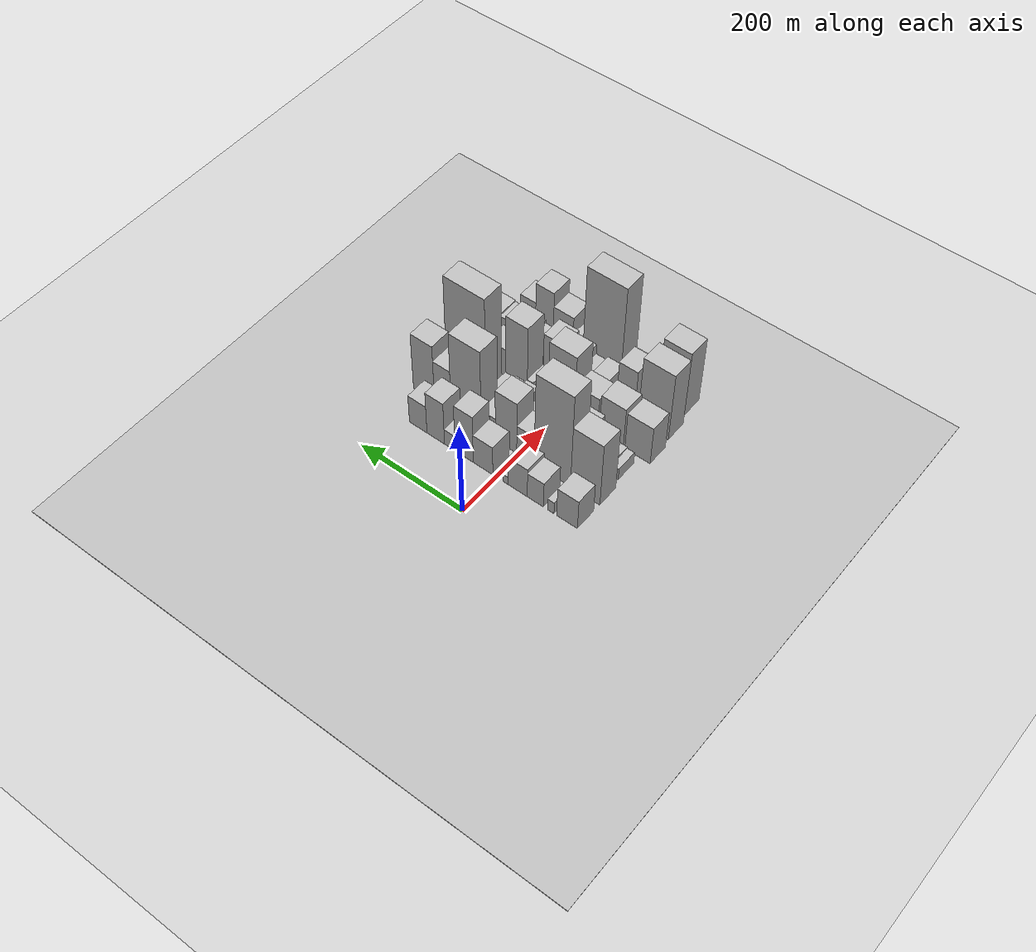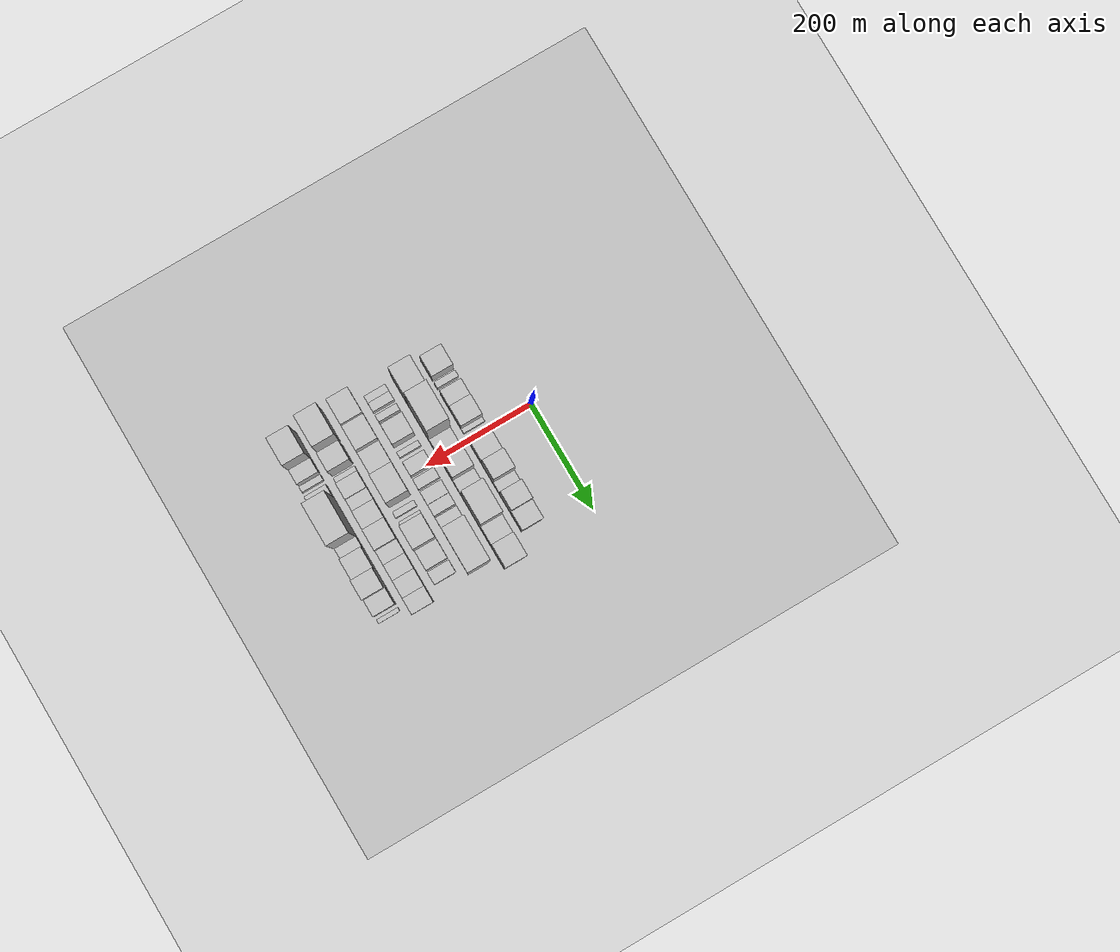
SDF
<sdf version="1.6">
 <world name="default">
  <include><name>ground_plane_1</name><uri>model://HANNAS_ground_plane</uri></include>
  <include>
   <name>ground_plane_2</name>
   <uri>model://HANNAS_ground_plane</uri>
   <pose>100 0 0  0 0 0</pose>
  </include>
  <model name="building_18">
   <static>1</static>
   <pose>100.0000 -134.1330 0 0.000000 0.000000 0.000000</pose>
   <link name="link">
    <pose>0 0 33.00 0 0 0</pose>
    <collision name="collision"><geometry><box><size>40.0000 38.6607 66.0000</size></box></geometry></collision>
    <visual name="visual">
     <cast_shadows>0</cast_shadows>
     <geometry><box><size>40.0000 38.6607 66.0000</size></box></geometry>
     <material>
      <script>
       <uri>model://HANNAS_wall/materials/scripts</uri>
       <uri>model://HANNAS_wall/materials/textures</uri>
       <name>vrc/HANNAS_wall</name>
      </script>
     </material>
    </visual>
   </link>
  </model>
  <model name="building_19">
   <static>1</static>
   <pose>100.0000 -103.9196 0 0.000000 0.000000 0.000000</pose>
   <link name="link">
    <pose>0 0 13.50 0 0 0</pose>
    <collision name="collision"><geometry><box><size>40.0000 11.7662 27.0000</size></box></geometry></collision>
    <visual name="visual">
     <cast_shadows>0</cast_shadows>
     <geometry><box><size>40.0000 11.7662 27.0000</size></box></geometry>
     <material>
      <script>
       <uri>model://HANNAS_wall/materials/scripts</uri>
       <uri>model://HANNAS_wall/materials/textures</uri>
       <name>vrc/HANNAS_wall</name>
      </script>
     </material>
    </visual>
   </link>
  </model>
  <model name="building_20">
   <static>1</static>
   <pose>100.0000 -74.7390 0 0.000000 0.000000 0.000000</pose>
   <link name="link">
    <pose>0 0 28.50 0 0 0</pose>
    <collision name="collision"><geometry><box><size>40.0000 30.5950 57.0000</size></box></geometry></collision>
    <visual name="visual">
     <cast_shadows>0</cast_shadows>
     <geometry><box><size>40.0000 30.5950 57.0000</size></box></geometry>
     <material>
      <script>
       <uri>model://HANNAS_wall/materials/scripts</uri>
       <uri>model://HANNAS_wall/materials/textures</uri>
       <name>vrc/HANNAS_wall</name>
      </script>
     </material>
    </visual>
   </link>
  </model>
  <model name="building_21">
   <static>1</static>
   <pose>100.0000 -40.7443 0 0.000000 0.000000 0.000000</pose>
   <link name="link">
    <pose>0 0 33.00 0 0 0</pose>
    <collision name="collision"><geometry><box><size>40.0000 37.3942 66.0000</size></box></geometry></collision>
    <visual name="visual">
     <cast_shadows>0</cast_shadows>
     <geometry><box><size>40.0000 37.3942 66.0000</size></box></geometry>
     <material>
      <script>
       <uri>model://HANNAS_wall/materials/scripts</uri>
       <uri>model://HANNAS_wall/materials/textures</uri>
       <name>vrc/HANNAS_wall</name>
      </script>
     </material>
    </visual>
   </link>
  </model>
  <model name="building_22">
   <static>1</static>
   <pose>100.0000 -17.7094 0 0.000000 0.000000 0.000000</pose>
   <link name="link">
    <pose>0 0 9.00 0 0 0</pose>
    <collision name="collision"><geometry><box><size>40.0000 8.6757 18.0000</size></box></geometry></collision>
    <visual name="visual">
     <cast_shadows>0</cast_shadows>
     <geometry><box><size>40.0000 8.6757 18.0000</size></box></geometry>
     <material>
      <script>
       <uri>model://HANNAS_wall/materials/scripts</uri>
       <uri>model://HANNAS_wall/materials/textures</uri>
       <name>vrc/HANNAS_wall</name>
      </script>
     </material>
    </visual>
   </link>
  </model>
  <model name="building_23">
   <static>1</static>
   <pose>100.0000 -3.8777 0 0.000000 0.000000 0.000000</pose>
   <link name="link">
    <pose>0 0 7.50 0 0 0</pose>
    <collision name="collision"><geometry><box><size>40.0000 6.9877 15.0000</size></box></geometry></collision>
    <visual name="visual">
     <cast_shadows>0</cast_shadows>
     <geometry><box><size>40.0000 6.9877 15.0000</size></box></geometry>
     <material>
      <script>
       <uri>model://HANNAS_wall/materials/scripts</uri>
       <uri>model://HANNAS_wall/materials/textures</uri>
       <name>vrc/HANNAS_wall</name>
      </script>
     </material>
    </visual>
   </link>
  </model>
  <model name="building_24">
   <static>1</static>
   <pose>100.0000 25.6848 0 0.000000 0.000000 0.000000</pose>
   <link name="link">
    <pose>0 0 33.00 0 0 0</pose>
    <collision name="collision"><geometry><box><size>40.0000 38.1373 66.0000</size></box></geometry></collision>
    <visual name="visual">
     <cast_shadows>0</cast_shadows>
     <geometry><box><size>40.0000 38.1373 66.0000</size></box></geometry>
     <material>
      <script>
       <uri>model://HANNAS_wall/materials/scripts</uri>
       <uri>model://HANNAS_wall/materials/textures</uri>
       <name>vrc/HANNAS_wall</name>
      </script>
     </material>
    </visual>
   </link>
  </model>
  <model name="building_25">
   <static>1</static>
   <pose>100.0000 62.7408 0 0.000000 0.000000 0.000000</pose>
   <link name="link">
    <pose>0 0 54.00 0 0 0</pose>
    <collision name="collision"><geometry><box><size>40.0000 35.9746 108.0000</size></box></geometry></collision>
    <visual name="visual">
     <cast_shadows>0</cast_shadows>
     <geometry><box><size>40.0000 35.9746 108.0000</size></box></geometry>
     <material>
      <script>
       <uri>model://HANNAS_wall/materials/scripts</uri>
       <uri>model://HANNAS_wall/materials/textures</uri>
       <name>vrc/HANNAS_wall</name>
      </script>
     </material>
    </visual>
   </link>
  </model>
  <model name="building_26">
   <static>1</static>
   <pose>100.0000 91.1006 0 0.000000 0.000000 0.000000</pose>
   <link name="link">
    <pose>0 0 18.00 0 0 0</pose>
    <collision name="collision"><geometry><box><size>40.0000 20.7449 36.0000</size></box></geometry></collision>
    <visual name="visual">
     <cast_shadows>0</cast_shadows>
     <geometry><box><size>40.0000 20.7449 36.0000</size></box></geometry>
     <material>
      <script>
       <uri>model://HANNAS_wall/materials/scripts</uri>
       <uri>model://HANNAS_wall/materials/textures</uri>
       <name>vrc/HANNAS_wall</name>
      </script>
     </material>
    </visual>
   </link>
  </model>
  <model name="building_27">
   <static>1</static>
   <pose>100.0000 119.0451 0 0.000000 0.000000 0.000000</pose>
   <link name="link">
    <pose>0 0 48.00 0 0 0</pose>
    <collision name="collision"><geometry><box><size>40.0000 35.1443 96.0000</size></box></geometry></collision>
    <visual name="visual">
     <cast_shadows>0</cast_shadows>
     <geometry><box><size>40.0000 35.1443 96.0000</size></box></geometry>
     <material>
      <script>
       <uri>model://HANNAS_wall/materials/scripts</uri>
       <uri>model://HANNAS_wall/materials/textures</uri>
       <name>vrc/HANNAS_wall</name>
      </script>
     </material>
    </visual>
   </link>
  </model>
  <model name="building_28">
   <static>1</static>
   <pose>100.0000 154.2895 0 0.000000 0.000000 0.000000</pose>
   <link name="link">
    <pose>0 0 31.50 0 0 0</pose>
    <collision name="collision"><geometry><box><size>40.0000 35.3444 63.0000</size></box></geometry></collision>
    <visual name="visual">
     <cast_shadows>0</cast_shadows>
     <geometry><box><size>40.0000 35.3444 63.0000</size></box></geometry>
     <material>
      <script>
       <uri>model://HANNAS_wall/materials/scripts</uri>
       <uri>model://HANNAS_wall/materials/textures</uri>
       <name>vrc/HANNAS_wall</name>
      </script>
     </material>
    </visual>
   </link>
  </model>
  <model name="building_71">
   <static>1</static>
   <pose>155.0000 -126.2887 0 0.000000 0.000000 0.000000</pose>
   <link name="link">
    <pose>0 0 70.50 0 0 0</pose>
    <collision name="collision"><geometry><box><size>40.0000 55.0686 141.0000</size></box></geometry></collision>
    <visual name="visual">
     <cast_shadows>0</cast_shadows>
     <geometry><box><size>40.0000 55.0686 141.0000</size></box></geometry>
     <material>
      <script>
       <uri>model://HANNAS_wall/materials/scripts</uri>
       <uri>model://HANNAS_wall/materials/textures</uri>
       <name>vrc/HANNAS_wall</name>
      </script>
     </material>
    </visual>
   </link>
  </model>
  <model name="building_72">
   <static>1</static>
   <pose>155.0000 -64.1300 0 0.000000 0.000000 0.000000</pose>
   <link name="link">
    <pose>0 0 105.00 0 0 0</pose>
    <collision name="collision"><geometry><box><size>40.0000 69.2488 210.0000</size></box></geometry></collision>
    <visual name="visual">
     <cast_shadows>0</cast_shadows>
     <geometry><box><size>40.0000 69.2488 210.0000</size></box></geometry>
     <material>
      <script>
       <uri>model://HANNAS_wall/materials/scripts</uri>
       <uri>model://HANNAS_wall/materials/textures</uri>
       <name>vrc/HANNAS_wall</name>
      </script>
     </material>
    </visual>
   </link>
  </model>
  <model name="building_73">
   <static>1</static>
   <pose>155.0000 -12.7014 0 0.000000 0.000000 0.000000</pose>
   <link name="link">
    <pose>0 0 33.00 0 0 0</pose>
    <collision name="collision"><geometry><box><size>40.0000 33.6084 66.0000</size></box></geometry></collision>
    <visual name="visual">
     <cast_shadows>0</cast_shadows>
     <geometry><box><size>40.0000 33.6084 66.0000</size></box></geometry>
     <material>
      <script>
       <uri>model://HANNAS_wall/materials/scripts</uri>
       <uri>model://HANNAS_wall/materials/textures</uri>
       <name>vrc/HANNAS_wall</name>
      </script>
     </material>
    </visual>
   </link>
  </model>
  <model name="building_74">
   <static>1</static>
   <pose>155.0000 24.8559 0 0.000000 0.000000 0.000000</pose>
   <link name="link">
    <pose>0 0 58.50 0 0 0</pose>
    <collision name="collision"><geometry><box><size>40.0000 41.5062 117.0000</size></box></geometry></collision>
    <visual name="visual">
     <cast_shadows>0</cast_shadows>
     <geometry><box><size>40.0000 41.5062 117.0000</size></box></geometry>
     <material>
      <script>
       <uri>model://HANNAS_wall/materials/scripts</uri>
       <uri>model://HANNAS_wall/materials/textures</uri>
       <name>vrc/HANNAS_wall</name>
      </script>
     </material>
    </visual>
   </link>
  </model>
  <model name="building_75">
   <static>1</static>
   <pose>155.0000 59.6833 0 0.000000 0.000000 0.000000</pose>
   <link name="link">
    <pose>0 0 25.50 0 0 0</pose>
    <collision name="collision"><geometry><box><size>40.0000 28.1487 51.0000</size></box></geometry></collision>
    <visual name="visual">
     <cast_shadows>0</cast_shadows>
     <geometry><box><size>40.0000 28.1487 51.0000</size></box></geometry>
     <material>
      <script>
       <uri>model://HANNAS_wall/materials/scripts</uri>
       <uri>model://HANNAS_wall/materials/textures</uri>
       <name>vrc/HANNAS_wall</name>
      </script>
     </material>
    </visual>
   </link>
  </model>
  <model name="building_76">
   <static>1</static>
   <pose>155.0000 103.7860 0 0.000000 0.000000 0.000000</pose>
   <link name="link">
    <pose>0 0 91.50 0 0 0</pose>
    <collision name="collision"><geometry><box><size>40.0000 60.0567 183.0000</size></box></geometry></collision>
    <visual name="visual">
     <cast_shadows>0</cast_shadows>
     <geometry><box><size>40.0000 60.0567 183.0000</size></box></geometry>
     <material>
      <script>
       <uri>model://HANNAS_wall/materials/scripts</uri>
       <uri>model://HANNAS_wall/materials/textures</uri>
       <name>vrc/HANNAS_wall</name>
      </script>
     </material>
    </visual>
   </link>
  </model>
  <model name="building_77">
   <static>1</static>
   <pose>155.0000 150.6863 0 0.000000 0.000000 0.000000</pose>
   <link name="link">
    <pose>0 0 48.00 0 0 0</pose>
    <collision name="collision"><geometry><box><size>40.0000 33.7438 96.0000</size></box></geometry></collision>
    <visual name="visual">
     <cast_shadows>0</cast_shadows>
     <geometry><box><size>40.0000 33.7438 96.0000</size></box></geometry>
     <material>
      <script>
       <uri>model://HANNAS_wall/materials/scripts</uri>
       <uri>model://HANNAS_wall/materials/textures</uri>
       <name>vrc/HANNAS_wall</name>
      </script>
     </material>
    </visual>
   </link>
  </model>
  <model name="building_78">
   <static>1</static>
   <pose>155.0000 189.0195 0 0.000000 0.000000 0.000000</pose>
   <link name="link">
    <pose>0 0 64.50 0 0 0</pose>
    <collision name="collision"><geometry><box><size>40.0000 42.9226 129.0000</size></box></geometry></collision>
    <visual name="visual">
     <cast_shadows>0</cast_shadows>
     <geometry><box><size>40.0000 42.9226 129.0000</size></box></geometry>
     <material>
      <script>
       <uri>model://HANNAS_wall/materials/scripts</uri>
       <uri>model://HANNAS_wall/materials/textures</uri>
       <name>vrc/HANNAS_wall</name>
      </script>
     </material>
    </visual>
   </link>
  </model>
  <model name="building_121">
   <static>1</static>
   <pose>210.0000 -140.7694 0 0.000000 0.000000 0.000000</pose>
   <link name="link">
    <pose>0 0 13.50 0 0 0</pose>
    <collision name="collision"><geometry><box><size>40.0000 13.4068 27.0000</size></box></geometry></collision>
    <visual name="visual">
     <cast_shadows>0</cast_shadows>
     <geometry><box><size>40.0000 13.4068 27.0000</size></box></geometry>
     <material>
      <script>
       <uri>model://HANNAS_wall/materials/scripts</uri>
       <uri>model://HANNAS_wall/materials/textures</uri>
       <name>vrc/HANNAS_wall</name>
      </script>
     </material>
    </visual>
   </link>
  </model>
  <model name="building_122">
   <static>1</static>
   <pose>210.0000 -125.6871 0 0.000000 0.000000 0.000000</pose>
   <link name="link">
    <pose>0 0 15.00 0 0 0</pose>
    <collision name="collision"><geometry><box><size>40.0000 16.7577 30.0000</size></box></geometry></collision>
    <visual name="visual">
     <cast_shadows>0</cast_shadows>
     <geometry><box><size>40.0000 16.7577 30.0000</size></box></geometry>
     <material>
      <script>
       <uri>model://HANNAS_wall/materials/scripts</uri>
       <uri>model://HANNAS_wall/materials/textures</uri>
       <name>vrc/HANNAS_wall</name>
      </script>
     </material>
    </visual>
   </link>
  </model>
  <model name="building_123">
   <static>1</static>
   <pose>210.0000 -105.0170 0 0.000000 0.000000 0.000000</pose>
   <link name="link">
    <pose>0 0 13.50 0 0 0</pose>
    <collision name="collision"><geometry><box><size>40.0000 12.5826 27.0000</size></box></geometry></collision>
    <visual name="visual">
     <cast_shadows>0</cast_shadows>
     <geometry><box><size>40.0000 12.5826 27.0000</size></box></geometry>
     <material>
      <script>
       <uri>model://HANNAS_wall/materials/scripts</uri>
       <uri>model://HANNAS_wall/materials/textures</uri>
       <name>vrc/HANNAS_wall</name>
      </script>
     </material>
    </visual>
   </link>
  </model>
  <model name="building_124">
   <static>1</static>
   <pose>210.0000 -70.7003 0 0.000000 0.000000 0.000000</pose>
   <link name="link">
    <pose>0 0 36.00 0 0 0</pose>
    <collision name="collision"><geometry><box><size>40.0000 38.0507 72.0000</size></box></geometry></collision>
    <visual name="visual">
     <cast_shadows>0</cast_shadows>
     <geometry><box><size>40.0000 38.0507 72.0000</size></box></geometry>
     <material>
      <script>
       <uri>model://HANNAS_wall/materials/scripts</uri>
       <uri>model://HANNAS_wall/materials/textures</uri>
       <name>vrc/HANNAS_wall</name>
      </script>
     </material>
    </visual>
   </link>
  </model>
  <model name="building_125">
   <static>1</static>
   <pose>210.0000 -36.4760 0 0.000000 0.000000 0.000000</pose>
   <link name="link">
    <pose>0 0 12.00 0 0 0</pose>
    <collision name="collision"><geometry><box><size>40.0000 10.3979 24.0000</size></box></geometry></collision>
    <visual name="visual">
     <cast_shadows>0</cast_shadows>
     <geometry><box><size>40.0000 10.3979 24.0000</size></box></geometry>
     <material>
      <script>
       <uri>model://HANNAS_wall/materials/scripts</uri>
       <uri>model://HANNAS_wall/materials/textures</uri>
       <name>vrc/HANNAS_wall</name>
      </script>
     </material>
    </visual>
   </link>
  </model>
  <model name="building_126">
   <static>1</static>
   <pose>210.0000 -8.0788 0 0.000000 0.000000 0.000000</pose>
   <link name="link">
    <pose>0 0 24.00 0 0 0</pose>
    <collision name="collision"><geometry><box><size>40.0000 26.3965 48.0000</size></box></geometry></collision>
    <visual name="visual">
     <cast_shadows>0</cast_shadows>
     <geometry><box><size>40.0000 26.3965 48.0000</size></box></geometry>
     <material>
      <script>
       <uri>model://HANNAS_wall/materials/scripts</uri>
       <uri>model://HANNAS_wall/materials/textures</uri>
       <name>vrc/HANNAS_wall</name>
      </script>
     </material>
    </visual>
   </link>
  </model>
  <model name="building_127">
   <static>1</static>
   <pose>210.0000 19.7451 0 0.000000 0.000000 0.000000</pose>
   <link name="link">
    <pose>0 0 16.50 0 0 0</pose>
    <collision name="collision"><geometry><box><size>40.0000 19.2513 33.0000</size></box></geometry></collision>
    <visual name="visual">
     <cast_shadows>0</cast_shadows>
     <geometry><box><size>40.0000 19.2513 33.0000</size></box></geometry>
     <material>
      <script>
       <uri>model://HANNAS_wall/materials/scripts</uri>
       <uri>model://HANNAS_wall/materials/textures</uri>
       <name>vrc/HANNAS_wall</name>
      </script>
     </material>
    </visual>
   </link>
  </model>
  <model name="building_128">
   <static>1</static>
   <pose>210.0000 46.5879 0 0.000000 0.000000 0.000000</pose>
   <link name="link">
    <pose>0 0 22.50 0 0 0</pose>
    <collision name="collision"><geometry><box><size>40.0000 24.4343 45.0000</size></box></geometry></collision>
    <visual name="visual">
     <cast_shadows>0</cast_shadows>
     <geometry><box><size>40.0000 24.4343 45.0000</size></box></geometry>
     <material>
      <script>
       <uri>model://HANNAS_wall/materials/scripts</uri>
       <uri>model://HANNAS_wall/materials/textures</uri>
       <name>vrc/HANNAS_wall</name>
      </script>
     </material>
    </visual>
   </link>
  </model>
  <model name="building_129">
   <static>1</static>
   <pose>210.0000 69.1998 0 0.000000 0.000000 0.000000</pose>
   <link name="link">
    <pose>0 0 19.50 0 0 0</pose>
    <collision name="collision"><geometry><box><size>40.0000 20.7896 39.0000</size></box></geometry></collision>
    <visual name="visual">
     <cast_shadows>0</cast_shadows>
     <geometry><box><size>40.0000 20.7896 39.0000</size></box></geometry>
     <material>
      <script>
       <uri>model://HANNAS_wall/materials/scripts</uri>
       <uri>model://HANNAS_wall/materials/textures</uri>
       <name>vrc/HANNAS_wall</name>
      </script>
     </material>
    </visual>
   </link>
  </model>
  <model name="building_130">
   <static>1</static>
   <pose>210.0000 91.9075 0 0.000000 0.000000 0.000000</pose>
   <link name="link">
    <pose>0 0 16.50 0 0 0</pose>
    <collision name="collision"><geometry><box><size>40.0000 18.6257 33.0000</size></box></geometry></collision>
    <visual name="visual">
     <cast_shadows>0</cast_shadows>
     <geometry><box><size>40.0000 18.6257 33.0000</size></box></geometry>
     <material>
      <script>
       <uri>model://HANNAS_wall/materials/scripts</uri>
       <uri>model://HANNAS_wall/materials/textures</uri>
       <name>vrc/HANNAS_wall</name>
      </script>
     </material>
    </visual>
   </link>
  </model>
  <model name="building_131">
   <static>1</static>
   <pose>210.0000 148.6969 0 0.000000 0.000000 0.000000</pose>
   <link name="link">
    <pose>0 0 112.50 0 0 0</pose>
    <collision name="collision"><geometry><box><size>40.0000 78.9530 225.0000</size></box></geometry></collision>
    <visual name="visual">
     <cast_shadows>0</cast_shadows>
     <geometry><box><size>40.0000 78.9530 225.0000</size></box></geometry>
     <material>
      <script>
       <uri>model://HANNAS_wall/materials/scripts</uri>
       <uri>model://HANNAS_wall/materials/textures</uri>
       <name>vrc/HANNAS_wall</name>
      </script>
     </material>
    </visual>
   </link>
  </model>
  <model name="building_175">
   <static>1</static>
   <pose>265.0000 -143.5590 0 0.000000 0.000000 0.000000</pose>
   <link name="link">
    <pose>0 0 42.00 0 0 0</pose>
    <collision name="collision"><geometry><box><size>40.0000 47.4509 84.0000</size></box></geometry></collision>
    <visual name="visual">
     <cast_shadows>0</cast_shadows>
     <geometry><box><size>40.0000 47.4509 84.0000</size></box></geometry>
     <material>
      <script>
       <uri>model://HANNAS_wall/materials/scripts</uri>
       <uri>model://HANNAS_wall/materials/textures</uri>
       <name>vrc/HANNAS_wall</name>
      </script>
     </material>
    </visual>
   </link>
  </model>
  <model name="building_176">
   <static>1</static>
   <pose>265.0000 -94.0019 0 0.000000 0.000000 0.000000</pose>
   <link name="link">
    <pose>0 0 45.00 0 0 0</pose>
    <collision name="collision"><geometry><box><size>40.0000 45.6634 90.0000</size></box></geometry></collision>
    <visual name="visual">
     <cast_shadows>0</cast_shadows>
     <geometry><box><size>40.0000 45.6634 90.0000</size></box></geometry>
     <material>
      <script>
       <uri>model://HANNAS_wall/materials/scripts</uri>
       <uri>model://HANNAS_wall/materials/textures</uri>
       <name>vrc/HANNAS_wall</name>
      </script>
     </material>
    </visual>
   </link>
  </model>
  <model name="building_177">
   <static>1</static>
   <pose>265.0000 -45.6022 0 0.000000 0.000000 0.000000</pose>
   <link name="link">
    <pose>0 0 39.00 0 0 0</pose>
    <collision name="collision"><geometry><box><size>40.0000 45.1358 78.0000</size></box></geometry></collision>
    <visual name="visual">
     <cast_shadows>0</cast_shadows>
     <geometry><box><size>40.0000 45.1358 78.0000</size></box></geometry>
     <material>
      <script>
       <uri>model://HANNAS_wall/materials/scripts</uri>
       <uri>model://HANNAS_wall/materials/textures</uri>
       <name>vrc/HANNAS_wall</name>
      </script>
     </material>
    </visual>
   </link>
  </model>
  <model name="building_178">
   <static>1</static>
   <pose>265.0000 2.9374 0 0.000000 0.000000 0.000000</pose>
   <link name="link">
    <pose>0 0 70.50 0 0 0</pose>
    <collision name="collision"><geometry><box><size>40.0000 51.9434 141.0000</size></box></geometry></collision>
    <visual name="visual">
     <cast_shadows>0</cast_shadows>
     <geometry><box><size>40.0000 51.9434 141.0000</size></box></geometry>
     <material>
      <script>
       <uri>model://HANNAS_wall/materials/scripts</uri>
       <uri>model://HANNAS_wall/materials/textures</uri>
       <name>vrc/HANNAS_wall</name>
      </script>
     </material>
    </visual>
   </link>
  </model>
  <model name="building_179">
   <static>1</static>
   <pose>265.0000 44.5115 0 0.000000 0.000000 0.000000</pose>
   <link name="link">
    <pose>0 0 12.00 0 0 0</pose>
    <collision name="collision"><geometry><box><size>40.0000 11.2050 24.0000</size></box></geometry></collision>
    <visual name="visual">
     <cast_shadows>0</cast_shadows>
     <geometry><box><size>40.0000 11.2050 24.0000</size></box></geometry>
     <material>
      <script>
       <uri>model://HANNAS_wall/materials/scripts</uri>
       <uri>model://HANNAS_wall/materials/textures</uri>
       <name>vrc/HANNAS_wall</name>
      </script>
     </material>
    </visual>
   </link>
  </model>
  <model name="building_180">
   <static>1</static>
   <pose>265.0000 63.9261 0 0.000000 0.000000 0.000000</pose>
   <link name="link">
    <pose>0 0 12.00 0 0 0</pose>
    <collision name="collision"><geometry><box><size>40.0000 11.6242 24.0000</size></box></geometry></collision>
    <visual name="visual">
     <cast_shadows>0</cast_shadows>
     <geometry><box><size>40.0000 11.6242 24.0000</size></box></geometry>
     <material>
      <script>
       <uri>model://HANNAS_wall/materials/scripts</uri>
       <uri>model://HANNAS_wall/materials/textures</uri>
       <name>vrc/HANNAS_wall</name>
      </script>
     </material>
    </visual>
   </link>
  </model>
  <model name="building_181">
   <static>1</static>
   <pose>265.0000 91.1959 0 0.000000 0.000000 0.000000</pose>
   <link name="link">
    <pose>0 0 70.50 0 0 0</pose>
    <collision name="collision"><geometry><box><size>40.0000 42.9154 141.0000</size></box></geometry></collision>
    <visual name="visual">
     <cast_shadows>0</cast_shadows>
     <geometry><box><size>40.0000 42.9154 141.0000</size></box></geometry>
     <material>
      <script>
       <uri>model://HANNAS_wall/materials/scripts</uri>
       <uri>model://HANNAS_wall/materials/textures</uri>
       <name>vrc/HANNAS_wall</name>
      </script>
     </material>
    </visual>
   </link>
  </model>
  <model name="building_182">
   <static>1</static>
   <pose>265.0000 130.6724 0 0.000000 0.000000 0.000000</pose>
   <link name="link">
    <pose>0 0 31.50 0 0 0</pose>
    <collision name="collision"><geometry><box><size>40.0000 36.0375 63.0000</size></box></geometry></collision>
    <visual name="visual">
     <cast_shadows>0</cast_shadows>
     <geometry><box><size>40.0000 36.0375 63.0000</size></box></geometry>
     <material>
      <script>
       <uri>model://HANNAS_wall/materials/scripts</uri>
       <uri>model://HANNAS_wall/materials/textures</uri>
       <name>vrc/HANNAS_wall</name>
      </script>
     </material>
    </visual>
   </link>
  </model>
  <model name="building_183">
   <static>1</static>
   <pose>265.0000 163.3015 0 0.000000 0.000000 0.000000</pose>
   <link name="link">
    <pose>0 0 22.50 0 0 0</pose>
    <collision name="collision"><geometry><box><size>40.0000 23.2209 45.0000</size></box></geometry></collision>
    <visual name="visual">
     <cast_shadows>0</cast_shadows>
     <geometry><box><size>40.0000 23.2209 45.0000</size></box></geometry>
     <material>
      <script>
       <uri>model://HANNAS_wall/materials/scripts</uri>
       <uri>model://HANNAS_wall/materials/textures</uri>
       <name>vrc/HANNAS_wall</name>
      </script>
     </material>
    </visual>
   </link>
  </model>
  <model name="building_229">
   <static>1</static>
   <pose>320.0000 -133.3621 0 0.000000 0.000000 0.000000</pose>
   <link name="link">
    <pose>0 0 75.00 0 0 0</pose>
    <collision name="collision"><geometry><box><size>40.0000 57.7199 150.0000</size></box></geometry></collision>
    <visual name="visual">
     <cast_shadows>0</cast_shadows>
     <geometry><box><size>40.0000 57.7199 150.0000</size></box></geometry>
     <material>
      <script>
       <uri>model://HANNAS_wall/materials/scripts</uri>
       <uri>model://HANNAS_wall/materials/textures</uri>
       <name>vrc/HANNAS_wall</name>
      </script>
     </material>
    </visual>
   </link>
  </model>
  <model name="building_230">
   <static>1</static>
   <pose>320.0000 -80.0571 0 0.000000 0.000000 0.000000</pose>
   <link name="link">
    <pose>0 0 55.50 0 0 0</pose>
    <collision name="collision"><geometry><box><size>40.0000 34.8900 111.0000</size></box></geometry></collision>
    <visual name="visual">
     <cast_shadows>0</cast_shadows>
     <geometry><box><size>40.0000 34.8900 111.0000</size></box></geometry>
     <material>
      <script>
       <uri>model://HANNAS_wall/materials/scripts</uri>
       <uri>model://HANNAS_wall/materials/textures</uri>
       <name>vrc/HANNAS_wall</name>
      </script>
     </material>
    </visual>
   </link>
  </model>
  <model name="building_231">
   <static>1</static>
   <pose>320.0000 -51.7716 0 0.000000 0.000000 0.000000</pose>
   <link name="link">
    <pose>0 0 12.00 0 0 0</pose>
    <collision name="collision"><geometry><box><size>40.0000 11.6810 24.0000</size></box></geometry></collision>
    <visual name="visual">
     <cast_shadows>0</cast_shadows>
     <geometry><box><size>40.0000 11.6810 24.0000</size></box></geometry>
     <material>
      <script>
       <uri>model://HANNAS_wall/materials/scripts</uri>
       <uri>model://HANNAS_wall/materials/textures</uri>
       <name>vrc/HANNAS_wall</name>
      </script>
     </material>
    </visual>
   </link>
  </model>
  <model name="building_232">
   <static>1</static>
   <pose>320.0000 -30.6308 0 0.000000 0.000000 0.000000</pose>
   <link name="link">
    <pose>0 0 27.00 0 0 0</pose>
    <collision name="collision"><geometry><box><size>40.0000 30.6006 54.0000</size></box></geometry></collision>
    <visual name="visual">
     <cast_shadows>0</cast_shadows>
     <geometry><box><size>40.0000 30.6006 54.0000</size></box></geometry>
     <material>
      <script>
       <uri>model://HANNAS_wall/materials/scripts</uri>
       <uri>model://HANNAS_wall/materials/textures</uri>
       <name>vrc/HANNAS_wall</name>
      </script>
     </material>
    </visual>
   </link>
  </model>
  <model name="building_233">
   <static>1</static>
   <pose>320.0000 -4.0093 0 0.000000 0.000000 0.000000</pose>
   <link name="link">
    <pose>0 0 22.50 0 0 0</pose>
    <collision name="collision"><geometry><box><size>40.0000 22.6423 45.0000</size></box></geometry></collision>
    <visual name="visual">
     <cast_shadows>0</cast_shadows>
     <geometry><box><size>40.0000 22.6423 45.0000</size></box></geometry>
     <material>
      <script>
       <uri>model://HANNAS_wall/materials/scripts</uri>
       <uri>model://HANNAS_wall/materials/textures</uri>
       <name>vrc/HANNAS_wall</name>
      </script>
     </material>
    </visual>
   </link>
  </model>
  <model name="building_234">
   <static>1</static>
   <pose>320.0000 24.4658 0 0.000000 0.000000 0.000000</pose>
   <link name="link">
    <pose>0 0 33.00 0 0 0</pose>
    <collision name="collision"><geometry><box><size>40.0000 34.3079 66.0000</size></box></geometry></collision>
    <visual name="visual">
     <cast_shadows>0</cast_shadows>
     <geometry><box><size>40.0000 34.3079 66.0000</size></box></geometry>
     <material>
      <script>
       <uri>model://HANNAS_wall/materials/scripts</uri>
       <uri>model://HANNAS_wall/materials/textures</uri>
       <name>vrc/HANNAS_wall</name>
      </script>
     </material>
    </visual>
   </link>
  </model>
  <model name="building_235">
   <static>1</static>
   <pose>320.0000 60.8890 0 0.000000 0.000000 0.000000</pose>
   <link name="link">
    <pose>0 0 37.50 0 0 0</pose>
    <collision name="collision"><geometry><box><size>40.0000 38.5385 75.0000</size></box></geometry></collision>
    <visual name="visual">
     <cast_shadows>0</cast_shadows>
     <geometry><box><size>40.0000 38.5385 75.0000</size></box></geometry>
     <material>
      <script>
       <uri>model://HANNAS_wall/materials/scripts</uri>
       <uri>model://HANNAS_wall/materials/textures</uri>
       <name>vrc/HANNAS_wall</name>
      </script>
     </material>
    </visual>
   </link>
  </model>
  <model name="building_236">
   <static>1</static>
   <pose>320.0000 93.3506 0 0.000000 0.000000 0.000000</pose>
   <link name="link">
    <pose>0 0 24.00 0 0 0</pose>
    <collision name="collision"><geometry><box><size>40.0000 26.3848 48.0000</size></box></geometry></collision>
    <visual name="visual">
     <cast_shadows>0</cast_shadows>
     <geometry><box><size>40.0000 26.3848 48.0000</size></box></geometry>
     <material>
      <script>
       <uri>model://HANNAS_wall/materials/scripts</uri>
       <uri>model://HANNAS_wall/materials/textures</uri>
       <name>vrc/HANNAS_wall</name>
      </script>
     </material>
    </visual>
   </link>
  </model>
  <model name="building_237">
   <static>1</static>
   <pose>320.0000 121.0649 0 0.000000 0.000000 0.000000</pose>
   <link name="link">
    <pose>0 0 27.00 0 0 0</pose>
    <collision name="collision"><geometry><box><size>40.0000 29.0437 54.0000</size></box></geometry></collision>
    <visual name="visual">
     <cast_shadows>0</cast_shadows>
     <geometry><box><size>40.0000 29.0437 54.0000</size></box></geometry>
     <material>
      <script>
       <uri>model://HANNAS_wall/materials/scripts</uri>
       <uri>model://HANNAS_wall/materials/textures</uri>
       <name>vrc/HANNAS_wall</name>
      </script>
     </material>
    </visual>
   </link>
  </model>
  <model name="building_238">
   <static>1</static>
   <pose>320.0000 151.7377 0 0.000000 0.000000 0.000000</pose>
   <link name="link">
    <pose>0 0 28.50 0 0 0</pose>
    <collision name="collision"><geometry><box><size>40.0000 32.3019 57.0000</size></box></geometry></collision>
    <visual name="visual">
     <cast_shadows>0</cast_shadows>
     <geometry><box><size>40.0000 32.3019 57.0000</size></box></geometry>
     <material>
      <script>
       <uri>model://HANNAS_wall/materials/scripts</uri>
       <uri>model://HANNAS_wall/materials/textures</uri>
       <name>vrc/HANNAS_wall</name>
      </script>
     </material>
    </visual>
   </link>
  </model>
  <model name="building_239">
   <static>1</static>
   <pose>320.0000 182.8970 0 0.000000 0.000000 0.000000</pose>
   <link name="link">
    <pose>0 0 30.00 0 0 0</pose>
    <collision name="collision"><geometry><box><size>40.0000 30.0168 60.0000</size></box></geometry></collision>
    <visual name="visual">
     <cast_shadows>0</cast_shadows>
     <geometry><box><size>40.0000 30.0168 60.0000</size></box></geometry>
     <material>
      <script>
       <uri>model://HANNAS_wall/materials/scripts</uri>
       <uri>model://HANNAS_wall/materials/textures</uri>
       <name>vrc/HANNAS_wall</name>
      </script>
     </material>
    </visual>
   </link>
  </model>
  <model name="building_274">
   <static>1</static>
   <pose>375.0000 -128.7007 0 0.000000 0.000000 0.000000</pose>
   <link name="link">
    <pose>0 0 72.00 0 0 0</pose>
    <collision name="collision"><geometry><box><size>40.0000 50.5272 144.0000</size></box></geometry></collision>
    <visual name="visual">
     <cast_shadows>0</cast_shadows>
     <geometry><box><size>40.0000 50.5272 144.0000</size></box></geometry>
     <material>
      <script>
       <uri>model://HANNAS_wall/materials/scripts</uri>
       <uri>model://HANNAS_wall/materials/textures</uri>
       <name>vrc/HANNAS_wall</name>
      </script>
     </material>
    </visual>
   </link>
  </model>
  <model name="building_275">
   <static>1</static>
   <pose>375.0000 -90.0775 0 0.000000 0.000000 0.000000</pose>
   <link name="link">
    <pose>0 0 22.50 0 0 0</pose>
    <collision name="collision"><geometry><box><size>40.0000 26.7192 45.0000</size></box></geometry></collision>
    <visual name="visual">
     <cast_shadows>0</cast_shadows>
     <geometry><box><size>40.0000 26.7192 45.0000</size></box></geometry>
     <material>
      <script>
       <uri>model://HANNAS_wall/materials/scripts</uri>
       <uri>model://HANNAS_wall/materials/textures</uri>
       <name>vrc/HANNAS_wall</name>
      </script>
     </material>
    </visual>
   </link>
  </model>
  <model name="building_276">
   <static>1</static>
   <pose>375.0000 -68.3093 0 0.000000 0.000000 0.000000</pose>
   <link name="link">
    <pose>0 0 12.00 0 0 0</pose>
    <collision name="collision"><geometry><box><size>40.0000 10.8172 24.0000</size></box></geometry></collision>
    <visual name="visual">
     <cast_shadows>0</cast_shadows>
     <geometry><box><size>40.0000 10.8172 24.0000</size></box></geometry>
     <material>
      <script>
       <uri>model://HANNAS_wall/materials/scripts</uri>
       <uri>model://HANNAS_wall/materials/textures</uri>
       <name>vrc/HANNAS_wall</name>
      </script>
     </material>
    </visual>
   </link>
  </model>
  <model name="building_277">
   <static>1</static>
   <pose>375.0000 -42.8008 0 0.000000 0.000000 0.000000</pose>
   <link name="link">
    <pose>0 0 19.50 0 0 0</pose>
    <collision name="collision"><geometry><box><size>40.0000 22.1997 39.0000</size></box></geometry></collision>
    <visual name="visual">
     <cast_shadows>0</cast_shadows>
     <geometry><box><size>40.0000 22.1997 39.0000</size></box></geometry>
     <material>
      <script>
       <uri>model://HANNAS_wall/materials/scripts</uri>
       <uri>model://HANNAS_wall/materials/textures</uri>
       <name>vrc/HANNAS_wall</name>
      </script>
     </material>
    </visual>
   </link>
  </model>
  <model name="building_278">
   <static>1</static>
   <pose>375.0000 5.8303 0 0.000000 0.000000 0.000000</pose>
   <link name="link">
    <pose>0 0 102.00 0 0 0</pose>
    <collision name="collision"><geometry><box><size>40.0000 75.0626 204.0000</size></box></geometry></collision>
    <visual name="visual">
     <cast_shadows>0</cast_shadows>
     <geometry><box><size>40.0000 75.0626 204.0000</size></box></geometry>
     <material>
      <script>
       <uri>model://HANNAS_wall/materials/scripts</uri>
       <uri>model://HANNAS_wall/materials/textures</uri>
       <name>vrc/HANNAS_wall</name>
      </script>
     </material>
    </visual>
   </link>
  </model>
  <model name="building_279">
   <static>1</static>
   <pose>375.0000 53.4915 0 0.000000 0.000000 0.000000</pose>
   <link name="link">
    <pose>0 0 19.50 0 0 0</pose>
    <collision name="collision"><geometry><box><size>40.0000 20.2598 39.0000</size></box></geometry></collision>
    <visual name="visual">
     <cast_shadows>0</cast_shadows>
     <geometry><box><size>40.0000 20.2598 39.0000</size></box></geometry>
     <material>
      <script>
       <uri>model://HANNAS_wall/materials/scripts</uri>
       <uri>model://HANNAS_wall/materials/textures</uri>
       <name>vrc/HANNAS_wall</name>
      </script>
     </material>
    </visual>
   </link>
  </model>
  <model name="building_280">
   <static>1</static>
   <pose>375.0000 83.3177 0 0.000000 0.000000 0.000000</pose>
   <link name="link">
    <pose>0 0 37.50 0 0 0</pose>
    <collision name="collision"><geometry><box><size>40.0000 39.3927 75.0000</size></box></geometry></collision>
    <visual name="visual">
     <cast_shadows>0</cast_shadows>
     <geometry><box><size>40.0000 39.3927 75.0000</size></box></geometry>
     <material>
      <script>
       <uri>model://HANNAS_wall/materials/scripts</uri>
       <uri>model://HANNAS_wall/materials/textures</uri>
       <name>vrc/HANNAS_wall</name>
      </script>
     </material>
    </visual>
   </link>
  </model>
  <model name="building_281">
   <static>1</static>
   <pose>375.0000 121.0157 0 0.000000 0.000000 0.000000</pose>
   <link name="link">
    <pose>0 0 52.50 0 0 0</pose>
    <collision name="collision"><geometry><box><size>40.0000 36.0034 105.0000</size></box></geometry></collision>
    <visual name="visual">
     <cast_shadows>0</cast_shadows>
     <geometry><box><size>40.0000 36.0034 105.0000</size></box></geometry>
     <material>
      <script>
       <uri>model://HANNAS_wall/materials/scripts</uri>
       <uri>model://HANNAS_wall/materials/textures</uri>
       <name>vrc/HANNAS_wall</name>
      </script>
     </material>
    </visual>
   </link>
  </model>
  <model name="building_282">
   <static>1</static>
   <pose>375.0000 154.3274 0 0.000000 0.000000 0.000000</pose>
   <link name="link">
    <pose>0 0 30.00 0 0 0</pose>
    <collision name="collision"><geometry><box><size>40.0000 30.6199 60.0000</size></box></geometry></collision>
    <visual name="visual">
     <cast_shadows>0</cast_shadows>
     <geometry><box><size>40.0000 30.6199 60.0000</size></box></geometry>
     <material>
      <script>
       <uri>model://HANNAS_wall/materials/scripts</uri>
       <uri>model://HANNAS_wall/materials/textures</uri>
       <name>vrc/HANNAS_wall</name>
      </script>
     </material>
    </visual>
   </link>
  </model>
  <model name="building_283">
   <static>1</static>
   <pose>375.0000 179.3019 0 0.000000 0.000000 0.000000</pose>
   <link name="link">
    <pose>0 0 7.50 0 0 0</pose>
    <collision name="collision"><geometry><box><size>40.0000 7.3292 15.0000</size></box></geometry></collision>
    <visual name="visual">
     <cast_shadows>0</cast_shadows>
     <geometry><box><size>40.0000 7.3292 15.0000</size></box></geometry>
     <material>
      <script>
       <uri>model://HANNAS_wall/materials/scripts</uri>
       <uri>model://HANNAS_wall/materials/textures</uri>
       <name>vrc/HANNAS_wall</name>
      </script>
     </material>
    </visual>
   </link>
  </model>
 </world>
</sdf>
